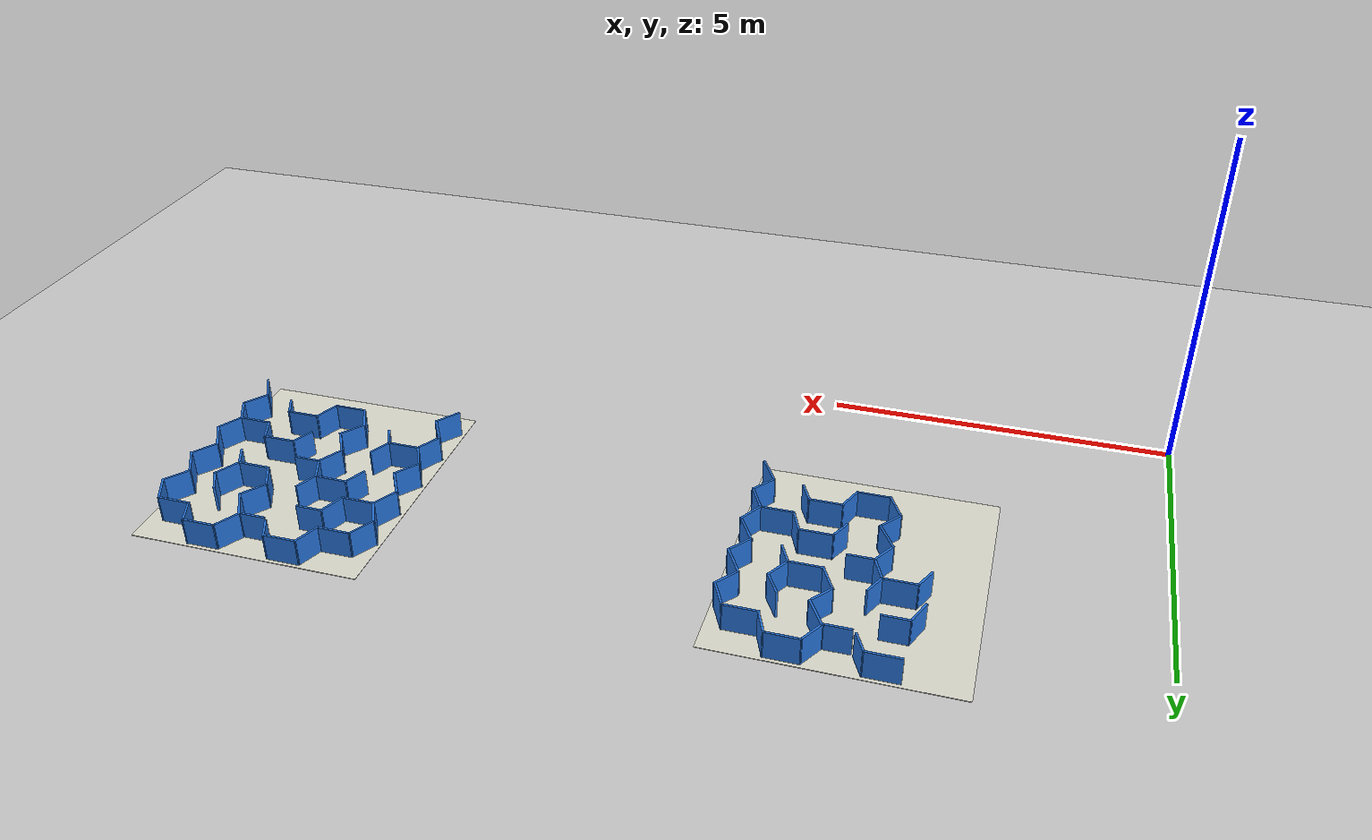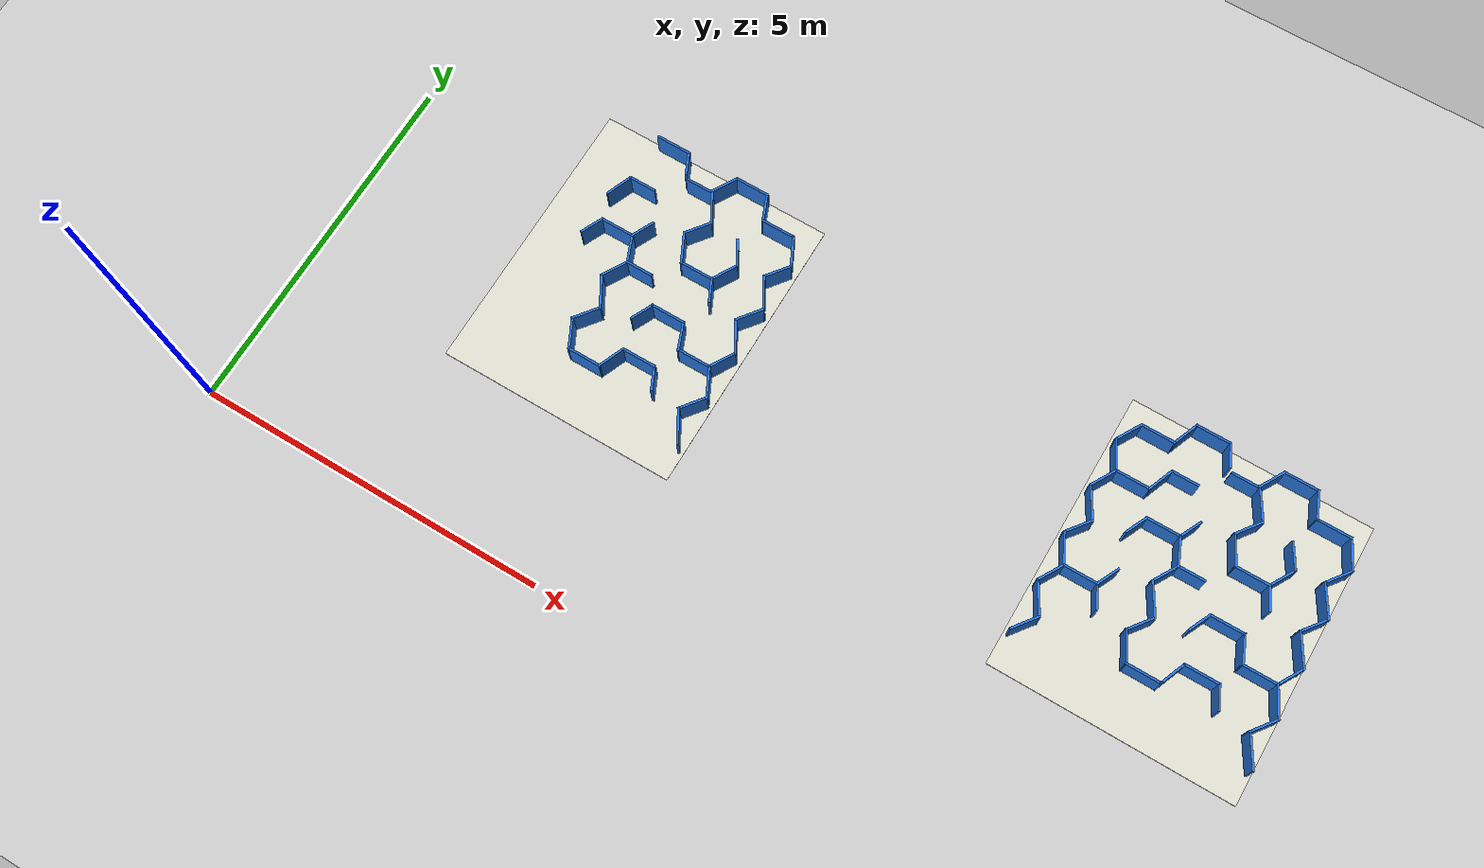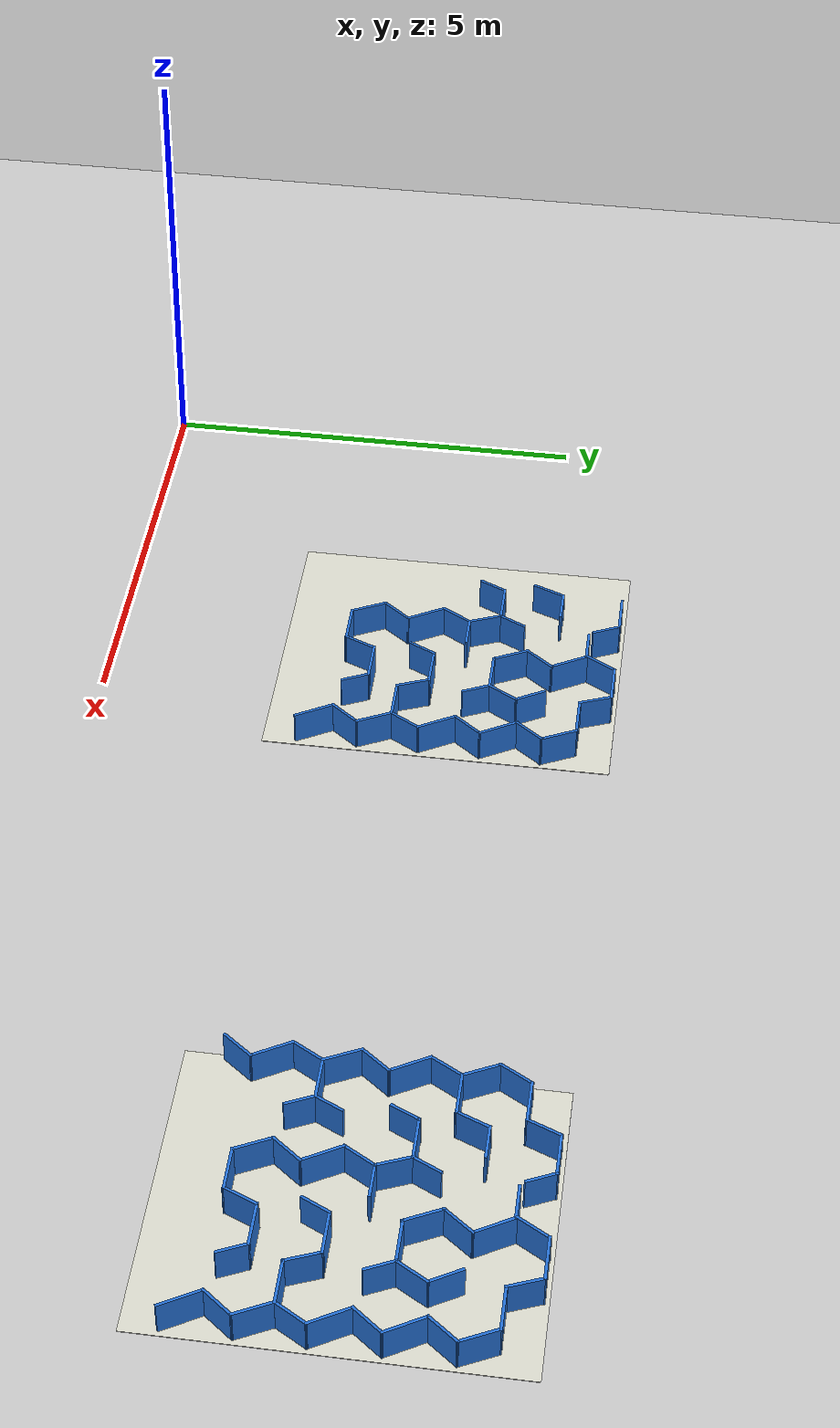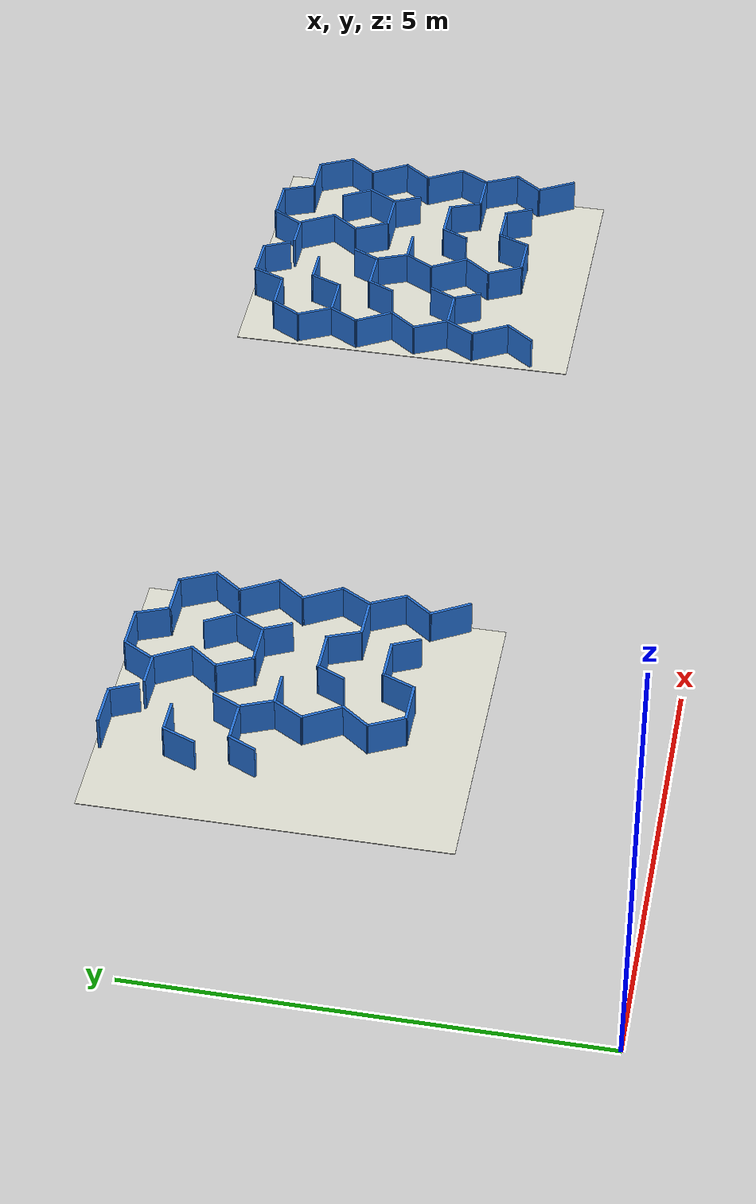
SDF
<sdf version="1.10">
 <world name="nhom8_maze_multi">
  <model name="ground_plane">
   <static>true</static>
   <link name="link">
    <collision name="collision">
     <geometry><plane><normal>0 0 1</normal><size>80.0 80.0</size></plane></geometry>
     <surface><friction><ode><mu>40</mu></ode></friction></surface>
    </collision>
    <visual name="visual">
     <geometry><plane><normal>0 0 1</normal><size>80.0 80.0</size></plane></geometry>
     <material>
      <ambient>0.8 0.8 0.8 1</ambient>
      <diffuse>0.8 0.8 0.8 1</diffuse>
      <specular>0.8 0.8 0.8 1</specular>
     </material>
    </visual>
   </link>
  </model>
  <model name="sigma_3_wall_000">
   <static>true</static>
   <pose>3.390850 5.935000 0.2000 0 0 0.000000</pose>
   <link name="link">
    <collision name="col"><geometry><box><size>0.4975 0.0300 0.4000</size></box></geometry></collision>
    <visual name="vis">
     <geometry><box><size>0.4975 0.0300 0.4000</size></box></geometry>
     <material><ambient>0.15 0.45 0.85 1</ambient><diffuse>0.15 0.45 0.85 1</diffuse></material>
    </visual>
   </link>
  </model>
  <model name="sigma_3_wall_001">
   <static>true</static>
   <pose>4.610000 5.935000 0.2000 0 0 0.000000</pose>
   <link name="link">
    <collision name="col"><geometry><box><size>0.4966 0.0300 0.4000</size></box></geometry></collision>
    <visual name="vis">
     <geometry><box><size>0.4966 0.0300 0.4000</size></box></geometry>
     <material><ambient>0.15 0.45 0.85 1</ambient><diffuse>0.15 0.45 0.85 1</diffuse></material>
    </visual>
   </link>
  </model>
  <model name="sigma_3_wall_003">
   <static>true</static>
   <pose>5.217350 5.585700 0.2000 0 0 0.000000</pose>
   <link name="link">
    <collision name="col"><geometry><box><size>0.4971 0.0300 0.4000</size></box></geometry></collision>
    <visual name="vis">
     <geometry><box><size>0.4971 0.0300 0.4000</size></box></geometry>
     <material><ambient>0.15 0.45 0.85 1</ambient><diffuse>0.15 0.45 0.85 1</diffuse></material>
    </visual>
   </link>
  </model>
  <model name="sigma_3_wall_004">
   <static>true</static>
   <pose>3.339100 5.231200 0.2000 0 0 0.000000</pose>
   <link name="link">
    <collision name="col"><geometry><box><size>0.3936 0.0300 0.4000</size></box></geometry></collision>
    <visual name="vis">
     <geometry><box><size>0.3936 0.0300 0.4000</size></box></geometry>
     <material><ambient>0.15 0.45 0.85 1</ambient><diffuse>0.15 0.45 0.85 1</diffuse></material>
    </visual>
   </link>
  </model>
  <model name="sigma_3_wall_006">
   <static>true</static>
   <pose>3.390150 4.530400 0.2000 0 0 0.000000</pose>
   <link name="link">
    <collision name="col"><geometry><box><size>0.4945 0.0300 0.4000</size></box></geometry></collision>
    <visual name="vis">
     <geometry><box><size>0.4945 0.0300 0.4000</size></box></geometry>
     <material><ambient>0.15 0.45 0.85 1</ambient><diffuse>0.15 0.45 0.85 1</diffuse></material>
    </visual>
   </link>
  </model>
  <model name="sigma_3_wall_007">
   <static>true</static>
   <pose>4.608950 4.530400 0.2000 0 0 0.000000</pose>
   <link name="link">
    <collision name="col"><geometry><box><size>0.4937 0.0300 0.4000</size></box></geometry></collision>
    <visual name="vis">
     <geometry><box><size>0.4937 0.0300 0.4000</size></box></geometry>
     <material><ambient>0.15 0.45 0.85 1</ambient><diffuse>0.15 0.45 0.85 1</diffuse></material>
    </visual>
   </link>
  </model>
  <model name="sigma_3_wall_008">
   <static>true</static>
   <pose>3.950200 4.176800 0.2000 0 0 0.000000</pose>
   <link name="link">
    <collision name="col"><geometry><box><size>0.3920 0.0300 0.4000</size></box></geometry></collision>
    <visual name="vis">
     <geometry><box><size>0.3920 0.0300 0.4000</size></box></geometry>
     <material><ambient>0.15 0.45 0.85 1</ambient><diffuse>0.15 0.45 0.85 1</diffuse></material>
    </visual>
   </link>
  </model>
  <model name="sigma_3_wall_009">
   <static>true</static>
   <pose>4.609900 3.826900 0.2000 0 0 0.000000</pose>
   <link name="link">
    <collision name="col"><geometry><box><size>0.4950 0.0300 0.4000</size></box></geometry></collision>
    <visual name="vis">
     <geometry><box><size>0.4950 0.0300 0.4000</size></box></geometry>
     <material><ambient>0.15 0.45 0.85 1</ambient><diffuse>0.15 0.45 0.85 1</diffuse></material>
    </visual>
   </link>
  </model>
  <model name="sigma_3_wall_011">
   <static>true</static>
   <pose>5.216650 3.475600 0.2000 0 0 0.000000</pose>
   <link name="link">
    <collision name="col"><geometry><box><size>0.4949 0.0300 0.4000</size></box></geometry></collision>
    <visual name="vis">
     <geometry><box><size>0.4949 0.0300 0.4000</size></box></geometry>
     <material><ambient>0.15 0.45 0.85 1</ambient><diffuse>0.15 0.45 0.85 1</diffuse></material>
    </visual>
   </link>
  </model>
  <model name="sigma_3_wall_012">
   <static>true</static>
   <pose>4.609750 3.122900 0.2000 0 0 0.000000</pose>
   <link name="link">
    <collision name="col"><geometry><box><size>0.4965 0.0300 0.4000</size></box></geometry></collision>
    <visual name="vis">
     <geometry><box><size>0.4965 0.0300 0.4000</size></box></geometry>
     <material><ambient>0.15 0.45 0.85 1</ambient><diffuse>0.15 0.45 0.85 1</diffuse></material>
    </visual>
   </link>
  </model>
  <model name="sigma_3_wall_013">
   <static>true</static>
   <pose>4.001200 2.774600 0.2000 0 0 0.000000</pose>
   <link name="link">
    <collision name="col"><geometry><box><size>0.4938 0.0300 0.4000</size></box></geometry></collision>
    <visual name="vis">
     <geometry><box><size>0.4938 0.0300 0.4000</size></box></geometry>
     <material><ambient>0.15 0.45 0.85 1</ambient><diffuse>0.15 0.45 0.85 1</diffuse></material>
    </visual>
   </link>
  </model>
  <model name="sigma_3_wall_018">
   <static>true</static>
   <pose>5.544000 5.396700 0.2000 0 0 -1.113095</pose>
   <link name="link">
    <collision name="col"><geometry><box><size>0.4512 0.0300 0.4000</size></box></geometry></collision>
    <visual name="vis">
     <geometry><box><size>0.4512 0.0300 0.4000</size></box></geometry>
     <material><ambient>0.15 0.45 0.85 1</ambient><diffuse>0.15 0.45 0.85 1</diffuse></material>
    </visual>
   </link>
  </model>
  <model name="sigma_3_wall_019">
   <static>true</static>
   <pose>4.913550 5.760300 0.2000 0 0 -1.188417</pose>
   <link name="link">
    <collision name="col"><geometry><box><size>0.4066 0.0300 0.4000</size></box></geometry></collision>
    <visual name="vis">
     <geometry><box><size>0.4066 0.0300 0.4000</size></box></geometry>
     <material><ambient>0.15 0.45 0.85 1</ambient><diffuse>0.15 0.45 0.85 1</diffuse></material>
    </visual>
   </link>
  </model>
  <model name="sigma_3_wall_020">
   <static>true</static>
   <pose>5.522350 4.706100 0.2000 0 0 -1.047139</pose>
   <link name="link">
    <collision name="col"><geometry><box><size>0.4922 0.0300 0.4000</size></box></geometry></collision>
    <visual name="vis">
     <geometry><box><size>0.4922 0.0300 0.4000</size></box></geometry>
     <material><ambient>0.15 0.45 0.85 1</ambient><diffuse>0.15 0.45 0.85 1</diffuse></material>
    </visual>
   </link>
  </model>
  <model name="sigma_3_wall_021">
   <static>true</static>
   <pose>4.938350 5.013750 0.2000 0 0 -1.047136</pose>
   <link name="link">
    <collision name="col"><geometry><box><size>0.3930 0.0300 0.4000</size></box></geometry></collision>
    <visual name="vis">
     <geometry><box><size>0.3930 0.0300 0.4000</size></box></geometry>
     <material><ambient>0.15 0.45 0.85 1</ambient><diffuse>0.15 0.45 0.85 1</diffuse></material>
    </visual>
   </link>
  </model>
  <model name="sigma_3_wall_022">
   <static>true</static>
   <pose>5.522050 4.002750 0.2000 0 0 -1.047107</pose>
   <link name="link">
    <collision name="col"><geometry><box><size>0.4941 0.0300 0.4000</size></box></geometry></collision>
    <visual name="vis">
     <geometry><box><size>0.4941 0.0300 0.4000</size></box></geometry>
     <material><ambient>0.15 0.45 0.85 1</ambient><diffuse>0.15 0.45 0.85 1</diffuse></material>
    </visual>
   </link>
  </model>
  <model name="sigma_3_wall_023">
   <static>true</static>
   <pose>4.304500 5.409350 0.2000 0 0 -1.047268</pose>
   <link name="link">
    <collision name="col"><geometry><box><size>0.4925 0.0300 0.4000</size></box></geometry></collision>
    <visual name="vis">
     <geometry><box><size>0.4925 0.0300 0.4000</size></box></geometry>
     <material><ambient>0.15 0.45 0.85 1</ambient><diffuse>0.15 0.45 0.85 1</diffuse></material>
    </visual>
   </link>
  </model>
  <model name="sigma_3_wall_024">
   <static>true</static>
   <pose>4.909850 4.385800 0.2000 0 0 -1.125015</pose>
   <link name="link">
    <collision name="col"><geometry><box><size>0.3504 0.0300 0.4000</size></box></geometry></collision>
    <visual name="vis">
     <geometry><box><size>0.3504 0.0300 0.4000</size></box></geometry>
     <material><ambient>0.15 0.45 0.85 1</ambient><diffuse>0.15 0.45 0.85 1</diffuse></material>
    </visual>
   </link>
  </model>
  <model name="sigma_3_wall_025">
   <static>true</static>
   <pose>5.543950 3.287150 0.2000 0 0 -1.104675</pose>
   <link name="link">
    <collision name="col"><geometry><box><size>0.4519 0.0300 0.4000</size></box></geometry></collision>
    <visual name="vis">
     <geometry><box><size>0.4519 0.0300 0.4000</size></box></geometry>
     <material><ambient>0.15 0.45 0.85 1</ambient><diffuse>0.15 0.45 0.85 1</diffuse></material>
    </visual>
   </link>
  </model>
  <model name="sigma_3_wall_026">
   <static>true</static>
   <pose>3.692750 5.791650 0.2000 0 0 -1.126587</pose>
   <link name="link">
    <collision name="col"><geometry><box><size>0.3474 0.0300 0.4000</size></box></geometry></collision>
    <visual name="vis">
     <geometry><box><size>0.3474 0.0300 0.4000</size></box></geometry>
     <material><ambient>0.15 0.45 0.85 1</ambient><diffuse>0.15 0.45 0.85 1</diffuse></material>
    </visual>
   </link>
  </model>
  <model name="sigma_3_wall_027">
   <static>true</static>
   <pose>4.283250 4.718350 0.2000 0 0 -1.107645</pose>
   <link name="link">
    <collision name="col"><geometry><box><size>0.4501 0.0300 0.4000</size></box></geometry></collision>
    <visual name="vis">
     <geometry><box><size>0.4501 0.0300 0.4000</size></box></geometry>
     <material><ambient>0.15 0.45 0.85 1</ambient><diffuse>0.15 0.45 0.85 1</diffuse></material>
    </visual>
   </link>
  </model>
  <model name="sigma_3_wall_028">
   <static>true</static>
   <pose>4.913300 3.651250 0.2000 0 0 -1.187201</pose>
   <link name="link">
    <collision name="col"><geometry><box><size>0.4088 0.0300 0.4000</size></box></geometry></collision>
    <visual name="vis">
     <geometry><box><size>0.4088 0.0300 0.4000</size></box></geometry>
     <material><ambient>0.15 0.45 0.85 1</ambient><diffuse>0.15 0.45 0.85 1</diffuse></material>
    </visual>
   </link>
  </model>
  <model name="sigma_3_wall_029">
   <static>true</static>
   <pose>5.522450 2.597250 0.2000 0 0 -1.047171</pose>
   <link name="link">
    <collision name="col"><geometry><box><size>0.4902 0.0300 0.4000</size></box></geometry></collision>
    <visual name="vis">
     <geometry><box><size>0.4902 0.0300 0.4000</size></box></geometry>
     <material><ambient>0.15 0.45 0.85 1</ambient><diffuse>0.15 0.45 0.85 1</diffuse></material>
    </visual>
   </link>
  </model>
  <model name="sigma_3_wall_030">
   <static>true</static>
   <pose>4.910600 2.979050 0.2000 0 0 -1.131443</pose>
   <link name="link">
    <collision name="col"><geometry><box><size>0.3479 0.0300 0.4000</size></box></geometry></collision>
    <visual name="vis">
     <geometry><box><size>0.3479 0.0300 0.4000</size></box></geometry>
     <material><ambient>0.15 0.45 0.85 1</ambient><diffuse>0.15 0.45 0.85 1</diffuse></material>
    </visual>
   </link>
  </model>
  <model name="sigma_3_wall_031">
   <static>true</static>
   <pose>3.695800 4.353600 0.2000 0 0 -1.177422</pose>
   <link name="link">
    <collision name="col"><geometry><box><size>0.4127 0.0300 0.4000</size></box></geometry></collision>
    <visual name="vis">
     <geometry><box><size>0.4127 0.0300 0.4000</size></box></geometry>
     <material><ambient>0.15 0.45 0.85 1</ambient><diffuse>0.15 0.45 0.85 1</diffuse></material>
    </visual>
   </link>
  </model>
  <model name="sigma_3_wall_033">
   <static>true</static>
   <pose>3.696100 3.651450 0.2000 0 0 -1.047065</pose>
   <link name="link">
    <collision name="col"><geometry><box><size>0.4923 0.0300 0.4000</size></box></geometry></collision>
    <visual name="vis">
     <geometry><box><size>0.4923 0.0300 0.4000</size></box></geometry>
     <material><ambient>0.15 0.45 0.85 1</ambient><diffuse>0.15 0.45 0.85 1</diffuse></material>
    </visual>
   </link>
  </model>
  <model name="sigma_3_wall_035">
   <static>true</static>
   <pose>3.674600 2.962500 0.2000 0 0 -1.104173</pose>
   <link name="link">
    <collision name="col"><geometry><box><size>0.4508 0.0300 0.4000</size></box></geometry></collision>
    <visual name="vis">
     <geometry><box><size>0.4508 0.0300 0.4000</size></box></geometry>
     <material><ambient>0.15 0.45 0.85 1</ambient><diffuse>0.15 0.45 0.85 1</diffuse></material>
    </visual>
   </link>
  </model>
  <model name="sigma_3_wall_044">
   <static>true</static>
   <pose>5.523100 2.947600 0.2000 0 0 0.917358</pose>
   <link name="link">
    <collision name="col"><geometry><box><size>0.4106 0.0300 0.4000</size></box></geometry></collision>
    <visual name="vis">
     <geometry><box><size>0.4106 0.0300 0.4000</size></box></geometry>
     <material><ambient>0.15 0.45 0.85 1</ambient><diffuse>0.15 0.45 0.85 1</diffuse></material>
    </visual>
   </link>
  </model>
  <model name="sigma_3_wall_045">
   <static>true</static>
   <pose>5.543600 3.638750 0.2000 0 0 1.045676</pose>
   <link name="link">
    <collision name="col"><geometry><box><size>0.4069 0.0300 0.4000</size></box></geometry></collision>
    <visual name="vis">
     <geometry><box><size>0.4069 0.0300 0.4000</size></box></geometry>
     <material><ambient>0.15 0.45 0.85 1</ambient><diffuse>0.15 0.45 0.85 1</diffuse></material>
    </visual>
   </link>
  </model>
  <model name="sigma_3_wall_046">
   <static>true</static>
   <pose>5.521950 4.354850 0.2000 0 0 0.916540</pose>
   <link name="link">
    <collision name="col"><geometry><box><size>0.4110 0.0300 0.4000</size></box></geometry></collision>
    <visual name="vis">
     <geometry><box><size>0.4110 0.0300 0.4000</size></box></geometry>
     <material><ambient>0.15 0.45 0.85 1</ambient><diffuse>0.15 0.45 0.85 1</diffuse></material>
    </visual>
   </link>
  </model>
  <model name="sigma_3_wall_048">
   <static>true</static>
   <pose>5.521950 5.057000 0.2000 0 0 0.918600</pose>
   <link name="link">
    <collision name="col"><geometry><box><size>0.4094 0.0300 0.4000</size></box></geometry></collision>
    <visual name="vis">
     <geometry><box><size>0.4094 0.0300 0.4000</size></box></geometry>
     <material><ambient>0.15 0.45 0.85 1</ambient><diffuse>0.15 0.45 0.85 1</diffuse></material>
    </visual>
   </link>
  </model>
  <model name="sigma_3_wall_049">
   <static>true</static>
   <pose>4.304800 2.948750 0.2000 0 0 1.180336</pose>
   <link name="link">
    <collision name="col"><geometry><box><size>0.4067 0.0300 0.4000</size></box></geometry></collision>
    <visual name="vis">
     <geometry><box><size>0.4067 0.0300 0.4000</size></box></geometry>
     <material><ambient>0.15 0.45 0.85 1</ambient><diffuse>0.15 0.45 0.85 1</diffuse></material>
    </visual>
   </link>
  </model>
  <model name="sigma_3_wall_050">
   <static>true</static>
   <pose>4.934950 4.693500 0.2000 0 0 1.047289</pose>
   <link name="link">
    <collision name="col"><geometry><box><size>0.4067 0.0300 0.4000</size></box></geometry></collision>
    <visual name="vis">
     <geometry><box><size>0.4067 0.0300 0.4000</size></box></geometry>
     <material><ambient>0.15 0.45 0.85 1</ambient><diffuse>0.15 0.45 0.85 1</diffuse></material>
    </visual>
   </link>
  </model>
  <model name="sigma_3_wall_051">
   <static>true</static>
   <pose>4.308700 3.683250 0.2000 0 0 1.124995</pose>
   <link name="link">
    <collision name="col"><geometry><box><size>0.3483 0.0300 0.4000</size></box></geometry></collision>
    <visual name="vis">
     <geometry><box><size>0.3483 0.0300 0.4000</size></box></geometry>
     <material><ambient>0.15 0.45 0.85 1</ambient><diffuse>0.15 0.45 0.85 1</diffuse></material>
    </visual>
   </link>
  </model>
  <model name="sigma_3_wall_053">
   <static>true</static>
   <pose>3.695800 3.300850 0.2000 0 0 0.914654</pose>
   <link name="link">
    <collision name="col"><geometry><box><size>0.4098 0.0300 0.4000</size></box></geometry></collision>
    <visual name="vis">
     <geometry><box><size>0.4098 0.0300 0.4000</size></box></geometry>
     <material><ambient>0.15 0.45 0.85 1</ambient><diffuse>0.15 0.45 0.85 1</diffuse></material>
    </visual>
   </link>
  </model>
  <model name="sigma_3_wall_055">
   <static>true</static>
   <pose>4.304750 5.057700 0.2000 0 0 0.919600</pose>
   <link name="link">
    <collision name="col"><geometry><box><size>0.4106 0.0300 0.4000</size></box></geometry></collision>
    <visual name="vis">
     <geometry><box><size>0.4106 0.0300 0.4000</size></box></geometry>
     <material><ambient>0.15 0.45 0.85 1</ambient><diffuse>0.15 0.45 0.85 1</diffuse></material>
    </visual>
   </link>
  </model>
  <model name="sigma_3_wall_056">
   <static>true</static>
   <pose>3.674850 4.014200 0.2000 0 0 1.045204</pose>
   <link name="link">
    <collision name="col"><geometry><box><size>0.4060 0.0300 0.4000</size></box></geometry></collision>
    <visual name="vis">
     <geometry><box><size>0.4060 0.0300 0.4000</size></box></geometry>
     <material><ambient>0.15 0.45 0.85 1</ambient><diffuse>0.15 0.45 0.85 1</diffuse></material>
    </visual>
   </link>
  </model>
  <model name="sigma_3_wall_057">
   <static>true</static>
   <pose>4.282800 5.772300 0.2000 0 0 1.047370</pose>
   <link name="link">
    <collision name="col"><geometry><box><size>0.4057 0.0300 0.4000</size></box></geometry></collision>
    <visual name="vis">
     <geometry><box><size>0.4057 0.0300 0.4000</size></box></geometry>
     <material><ambient>0.15 0.45 0.85 1</ambient><diffuse>0.15 0.45 0.85 1</diffuse></material>
    </visual>
   </link>
  </model>
  <model name="sigma_3_wall_058">
   <static>true</static>
   <pose>3.691750 4.674250 0.2000 0 0 1.121614</pose>
   <link name="link">
    <collision name="col"><geometry><box><size>0.3494 0.0300 0.4000</size></box></geometry></collision>
    <visual name="vis">
     <geometry><box><size>0.3494 0.0300 0.4000</size></box></geometry>
     <material><ambient>0.15 0.45 0.85 1</ambient><diffuse>0.15 0.45 0.85 1</diffuse></material>
    </visual>
   </link>
  </model>
  <model name="sigma_3_wall_061">
   <static>true</static>
   <pose>3.089950 4.385500 0.2000 0 0 1.132702</pose>
   <link name="link">
    <collision name="col"><geometry><box><size>0.3501 0.0300 0.4000</size></box></geometry></collision>
    <visual name="vis">
     <geometry><box><size>0.3501 0.0300 0.4000</size></box></geometry>
     <material><ambient>0.15 0.45 0.85 1</ambient><diffuse>0.15 0.45 0.85 1</diffuse></material>
    </visual>
   </link>
  </model>
  <model name="sigma_3_wall_063">
   <static>true</static>
   <pose>3.087400 5.058100 0.2000 0 0 1.187067</pose>
   <link name="link">
    <collision name="col"><geometry><box><size>0.4033 0.0300 0.4000</size></box></geometry></collision>
    <visual name="vis">
     <geometry><box><size>0.4033 0.0300 0.4000</size></box></geometry>
     <material><ambient>0.15 0.45 0.85 1</ambient><diffuse>0.15 0.45 0.85 1</diffuse></material>
    </visual>
   </link>
  </model>
  <model name="sigma_3_wall_068">
   <static>true</static>
   <pose>4.002900 5.594200 0.2000 0 0 0.000000</pose>
   <link name="link">
    <collision name="col"><geometry><box><size>0.3966 0.0300 0.4000</size></box></geometry></collision>
    <visual name="vis">
     <geometry><box><size>0.3966 0.0300 0.4000</size></box></geometry>
     <material><ambient>0.15 0.45 0.85 1</ambient><diffuse>0.15 0.45 0.85 1</diffuse></material>
    </visual>
   </link>
  </model>
  <model name="sigma_3_floor">
   <static>true</static>
   <pose>4.000000 4.000000 -0.02 0 0 0</pose>
   <link name="link">
    <collision name="col"><geometry><box><size>3.3952 3.9891 0.03</size></box></geometry></collision>
    <visual name="vis">
     <geometry><box><size>3.3952 3.9891 0.03</size></box></geometry>
     <material><ambient>0.87 0.87 0.82 1</ambient><diffuse>0.87 0.87 0.82 1</diffuse></material>
    </visual>
   </link>
  </model>
  <model name="sigma_4_wall_000">
   <static>true</static>
   <pose>11.390850 5.935000 0.2000 0 0 0.000000</pose>
   <link name="link">
    <collision name="col"><geometry><box><size>0.4975 0.0300 0.4000</size></box></geometry></collision>
    <visual name="vis">
     <geometry><box><size>0.4975 0.0300 0.4000</size></box></geometry>
     <material><ambient>0.15 0.45 0.85 1</ambient><diffuse>0.15 0.45 0.85 1</diffuse></material>
    </visual>
   </link>
  </model>
  <model name="sigma_4_wall_001">
   <static>true</static>
   <pose>12.610000 5.935000 0.2000 0 0 0.000000</pose>
   <link name="link">
    <collision name="col"><geometry><box><size>0.4966 0.0300 0.4000</size></box></geometry></collision>
    <visual name="vis">
     <geometry><box><size>0.4966 0.0300 0.4000</size></box></geometry>
     <material><ambient>0.15 0.45 0.85 1</ambient><diffuse>0.15 0.45 0.85 1</diffuse></material>
    </visual>
   </link>
  </model>
  <model name="sigma_4_wall_002">
   <static>true</static>
   <pose>10.784750 5.585700 0.2000 0 0 0.000000</pose>
   <link name="link">
    <collision name="col"><geometry><box><size>0.4951 0.0300 0.4000</size></box></geometry></collision>
    <visual name="vis">
     <geometry><box><size>0.4951 0.0300 0.4000</size></box></geometry>
     <material><ambient>0.15 0.45 0.85 1</ambient><diffuse>0.15 0.45 0.85 1</diffuse></material>
    </visual>
   </link>
  </model>
  <model name="sigma_4_wall_003">
   <static>true</static>
   <pose>13.217350 5.585700 0.2000 0 0 0.000000</pose>
   <link name="link">
    <collision name="col"><geometry><box><size>0.4971 0.0300 0.4000</size></box></geometry></collision>
    <visual name="vis">
     <geometry><box><size>0.4971 0.0300 0.4000</size></box></geometry>
     <material><ambient>0.15 0.45 0.85 1</ambient><diffuse>0.15 0.45 0.85 1</diffuse></material>
    </visual>
   </link>
  </model>
  <model name="sigma_4_wall_004">
   <static>true</static>
   <pose>11.339100 5.231200 0.2000 0 0 0.000000</pose>
   <link name="link">
    <collision name="col"><geometry><box><size>0.3936 0.0300 0.4000</size></box></geometry></collision>
    <visual name="vis">
     <geometry><box><size>0.3936 0.0300 0.4000</size></box></geometry>
     <material><ambient>0.15 0.45 0.85 1</ambient><diffuse>0.15 0.45 0.85 1</diffuse></material>
    </visual>
   </link>
  </model>
  <model name="sigma_4_wall_005">
   <static>true</static>
   <pose>10.784350 4.885000 0.2000 0 0 0.000000</pose>
   <link name="link">
    <collision name="col"><geometry><box><size>0.4963 0.0300 0.4000</size></box></geometry></collision>
    <visual name="vis">
     <geometry><box><size>0.4963 0.0300 0.4000</size></box></geometry>
     <material><ambient>0.15 0.45 0.85 1</ambient><diffuse>0.15 0.45 0.85 1</diffuse></material>
    </visual>
   </link>
  </model>
  <model name="sigma_4_wall_006">
   <static>true</static>
   <pose>11.390150 4.530400 0.2000 0 0 0.000000</pose>
   <link name="link">
    <collision name="col"><geometry><box><size>0.4945 0.0300 0.4000</size></box></geometry></collision>
    <visual name="vis">
     <geometry><box><size>0.4945 0.0300 0.4000</size></box></geometry>
     <material><ambient>0.15 0.45 0.85 1</ambient><diffuse>0.15 0.45 0.85 1</diffuse></material>
    </visual>
   </link>
  </model>
  <model name="sigma_4_wall_007">
   <static>true</static>
   <pose>12.608950 4.530400 0.2000 0 0 0.000000</pose>
   <link name="link">
    <collision name="col"><geometry><box><size>0.4937 0.0300 0.4000</size></box></geometry></collision>
    <visual name="vis">
     <geometry><box><size>0.4937 0.0300 0.4000</size></box></geometry>
     <material><ambient>0.15 0.45 0.85 1</ambient><diffuse>0.15 0.45 0.85 1</diffuse></material>
    </visual>
   </link>
  </model>
  <model name="sigma_4_wall_008">
   <static>true</static>
   <pose>11.950200 4.176800 0.2000 0 0 0.000000</pose>
   <link name="link">
    <collision name="col"><geometry><box><size>0.3920 0.0300 0.4000</size></box></geometry></collision>
    <visual name="vis">
     <geometry><box><size>0.3920 0.0300 0.4000</size></box></geometry>
     <material><ambient>0.15 0.45 0.85 1</ambient><diffuse>0.15 0.45 0.85 1</diffuse></material>
    </visual>
   </link>
  </model>
  <model name="sigma_4_wall_009">
   <static>true</static>
   <pose>12.609900 3.826900 0.2000 0 0 0.000000</pose>
   <link name="link">
    <collision name="col"><geometry><box><size>0.4950 0.0300 0.4000</size></box></geometry></collision>
    <visual name="vis">
     <geometry><box><size>0.4950 0.0300 0.4000</size></box></geometry>
     <material><ambient>0.15 0.45 0.85 1</ambient><diffuse>0.15 0.45 0.85 1</diffuse></material>
    </visual>
   </link>
  </model>
  <model name="sigma_4_wall_010">
   <static>true</static>
   <pose>10.782050 3.475600 0.2000 0 0 0.000000</pose>
   <link name="link">
    <collision name="col"><geometry><box><size>0.4929 0.0300 0.4000</size></box></geometry></collision>
    <visual name="vis">
     <geometry><box><size>0.4929 0.0300 0.4000</size></box></geometry>
     <material><ambient>0.15 0.45 0.85 1</ambient><diffuse>0.15 0.45 0.85 1</diffuse></material>
    </visual>
   </link>
  </model>
  <model name="sigma_4_wall_011">
   <static>true</static>
   <pose>13.216650 3.475600 0.2000 0 0 0.000000</pose>
   <link name="link">
    <collision name="col"><geometry><box><size>0.4949 0.0300 0.4000</size></box></geometry></collision>
    <visual name="vis">
     <geometry><box><size>0.4949 0.0300 0.4000</size></box></geometry>
     <material><ambient>0.15 0.45 0.85 1</ambient><diffuse>0.15 0.45 0.85 1</diffuse></material>
    </visual>
   </link>
  </model>
  <model name="sigma_4_wall_012">
   <static>true</static>
   <pose>12.609750 3.122900 0.2000 0 0 0.000000</pose>
   <link name="link">
    <collision name="col"><geometry><box><size>0.4965 0.0300 0.4000</size></box></geometry></collision>
    <visual name="vis">
     <geometry><box><size>0.4965 0.0300 0.4000</size></box></geometry>
     <material><ambient>0.15 0.45 0.85 1</ambient><diffuse>0.15 0.45 0.85 1</diffuse></material>
    </visual>
   </link>
  </model>
  <model name="sigma_4_wall_013">
   <static>true</static>
   <pose>12.001200 2.774600 0.2000 0 0 0.000000</pose>
   <link name="link">
    <collision name="col"><geometry><box><size>0.4938 0.0300 0.4000</size></box></geometry></collision>
    <visual name="vis">
     <geometry><box><size>0.4938 0.0300 0.4000</size></box></geometry>
     <material><ambient>0.15 0.45 0.85 1</ambient><diffuse>0.15 0.45 0.85 1</diffuse></material>
    </visual>
   </link>
  </model>
  <model name="sigma_4_wall_018">
   <static>true</static>
   <pose>13.544000 5.396700 0.2000 0 0 -1.113095</pose>
   <link name="link">
    <collision name="col"><geometry><box><size>0.4512 0.0300 0.4000</size></box></geometry></collision>
    <visual name="vis">
     <geometry><box><size>0.4512 0.0300 0.4000</size></box></geometry>
     <material><ambient>0.15 0.45 0.85 1</ambient><diffuse>0.15 0.45 0.85 1</diffuse></material>
    </visual>
   </link>
  </model>
  <model name="sigma_4_wall_019">
   <static>true</static>
   <pose>12.913550 5.760300 0.2000 0 0 -1.188417</pose>
   <link name="link">
    <collision name="col"><geometry><box><size>0.4066 0.0300 0.4000</size></box></geometry></collision>
    <visual name="vis">
     <geometry><box><size>0.4066 0.0300 0.4000</size></box></geometry>
     <material><ambient>0.15 0.45 0.85 1</ambient><diffuse>0.15 0.45 0.85 1</diffuse></material>
    </visual>
   </link>
  </model>
  <model name="sigma_4_wall_020">
   <static>true</static>
   <pose>13.522350 4.706100 0.2000 0 0 -1.047139</pose>
   <link name="link">
    <collision name="col"><geometry><box><size>0.4922 0.0300 0.4000</size></box></geometry></collision>
    <visual name="vis">
     <geometry><box><size>0.4922 0.0300 0.4000</size></box></geometry>
     <material><ambient>0.15 0.45 0.85 1</ambient><diffuse>0.15 0.45 0.85 1</diffuse></material>
    </visual>
   </link>
  </model>
  <model name="sigma_4_wall_021">
   <static>true</static>
   <pose>12.938350 5.013750 0.2000 0 0 -1.047136</pose>
   <link name="link">
    <collision name="col"><geometry><box><size>0.3930 0.0300 0.4000</size></box></geometry></collision>
    <visual name="vis">
     <geometry><box><size>0.3930 0.0300 0.4000</size></box></geometry>
     <material><ambient>0.15 0.45 0.85 1</ambient><diffuse>0.15 0.45 0.85 1</diffuse></material>
    </visual>
   </link>
  </model>
  <model name="sigma_4_wall_022">
   <static>true</static>
   <pose>13.522050 4.002750 0.2000 0 0 -1.047107</pose>
   <link name="link">
    <collision name="col"><geometry><box><size>0.4941 0.0300 0.4000</size></box></geometry></collision>
    <visual name="vis">
     <geometry><box><size>0.4941 0.0300 0.4000</size></box></geometry>
     <material><ambient>0.15 0.45 0.85 1</ambient><diffuse>0.15 0.45 0.85 1</diffuse></material>
    </visual>
   </link>
  </model>
  <model name="sigma_4_wall_023">
   <static>true</static>
   <pose>12.304500 5.409350 0.2000 0 0 -1.047268</pose>
   <link name="link">
    <collision name="col"><geometry><box><size>0.4925 0.0300 0.4000</size></box></geometry></collision>
    <visual name="vis">
     <geometry><box><size>0.4925 0.0300 0.4000</size></box></geometry>
     <material><ambient>0.15 0.45 0.85 1</ambient><diffuse>0.15 0.45 0.85 1</diffuse></material>
    </visual>
   </link>
  </model>
  <model name="sigma_4_wall_024">
   <static>true</static>
   <pose>12.909850 4.385800 0.2000 0 0 -1.125015</pose>
   <link name="link">
    <collision name="col"><geometry><box><size>0.3504 0.0300 0.4000</size></box></geometry></collision>
    <visual name="vis">
     <geometry><box><size>0.3504 0.0300 0.4000</size></box></geometry>
     <material><ambient>0.15 0.45 0.85 1</ambient><diffuse>0.15 0.45 0.85 1</diffuse></material>
    </visual>
   </link>
  </model>
  <model name="sigma_4_wall_025">
   <static>true</static>
   <pose>13.543950 3.287150 0.2000 0 0 -1.104675</pose>
   <link name="link">
    <collision name="col"><geometry><box><size>0.4519 0.0300 0.4000</size></box></geometry></collision>
    <visual name="vis">
     <geometry><box><size>0.4519 0.0300 0.4000</size></box></geometry>
     <material><ambient>0.15 0.45 0.85 1</ambient><diffuse>0.15 0.45 0.85 1</diffuse></material>
    </visual>
   </link>
  </model>
  <model name="sigma_4_wall_026">
   <static>true</static>
   <pose>11.692750 5.791650 0.2000 0 0 -1.126587</pose>
   <link name="link">
    <collision name="col"><geometry><box><size>0.3474 0.0300 0.4000</size></box></geometry></collision>
    <visual name="vis">
     <geometry><box><size>0.3474 0.0300 0.4000</size></box></geometry>
     <material><ambient>0.15 0.45 0.85 1</ambient><diffuse>0.15 0.45 0.85 1</diffuse></material>
    </visual>
   </link>
  </model>
  <model name="sigma_4_wall_027">
   <static>true</static>
   <pose>12.283250 4.718350 0.2000 0 0 -1.107645</pose>
   <link name="link">
    <collision name="col"><geometry><box><size>0.4501 0.0300 0.4000</size></box></geometry></collision>
    <visual name="vis">
     <geometry><box><size>0.4501 0.0300 0.4000</size></box></geometry>
     <material><ambient>0.15 0.45 0.85 1</ambient><diffuse>0.15 0.45 0.85 1</diffuse></material>
    </visual>
   </link>
  </model>
  <model name="sigma_4_wall_028">
   <static>true</static>
   <pose>12.913300 3.651250 0.2000 0 0 -1.187201</pose>
   <link name="link">
    <collision name="col"><geometry><box><size>0.4088 0.0300 0.4000</size></box></geometry></collision>
    <visual name="vis">
     <geometry><box><size>0.4088 0.0300 0.4000</size></box></geometry>
     <material><ambient>0.15 0.45 0.85 1</ambient><diffuse>0.15 0.45 0.85 1</diffuse></material>
    </visual>
   </link>
  </model>
  <model name="sigma_4_wall_029">
   <static>true</static>
   <pose>13.522450 2.597250 0.2000 0 0 -1.047171</pose>
   <link name="link">
    <collision name="col"><geometry><box><size>0.4902 0.0300 0.4000</size></box></geometry></collision>
    <visual name="vis">
     <geometry><box><size>0.4902 0.0300 0.4000</size></box></geometry>
     <material><ambient>0.15 0.45 0.85 1</ambient><diffuse>0.15 0.45 0.85 1</diffuse></material>
    </visual>
   </link>
  </model>
  <model name="sigma_4_wall_030">
   <static>true</static>
   <pose>12.910600 2.979050 0.2000 0 0 -1.131443</pose>
   <link name="link">
    <collision name="col"><geometry><box><size>0.3479 0.0300 0.4000</size></box></geometry></collision>
    <visual name="vis">
     <geometry><box><size>0.3479 0.0300 0.4000</size></box></geometry>
     <material><ambient>0.15 0.45 0.85 1</ambient><diffuse>0.15 0.45 0.85 1</diffuse></material>
    </visual>
   </link>
  </model>
  <model name="sigma_4_wall_031">
   <static>true</static>
   <pose>11.695800 4.353600 0.2000 0 0 -1.177422</pose>
   <link name="link">
    <collision name="col"><geometry><box><size>0.4127 0.0300 0.4000</size></box></geometry></collision>
    <visual name="vis">
     <geometry><box><size>0.4127 0.0300 0.4000</size></box></geometry>
     <material><ambient>0.15 0.45 0.85 1</ambient><diffuse>0.15 0.45 0.85 1</diffuse></material>
    </visual>
   </link>
  </model>
  <model name="sigma_4_wall_033">
   <static>true</static>
   <pose>11.696100 3.651450 0.2000 0 0 -1.047065</pose>
   <link name="link">
    <collision name="col"><geometry><box><size>0.4923 0.0300 0.4000</size></box></geometry></collision>
    <visual name="vis">
     <geometry><box><size>0.4923 0.0300 0.4000</size></box></geometry>
     <material><ambient>0.15 0.45 0.85 1</ambient><diffuse>0.15 0.45 0.85 1</diffuse></material>
    </visual>
   </link>
  </model>
  <model name="sigma_4_wall_034">
   <static>true</static>
   <pose>10.457350 5.071300 0.2000 0 0 -1.103949</pose>
   <link name="link">
    <collision name="col"><geometry><box><size>0.4473 0.0300 0.4000</size></box></geometry></collision>
    <visual name="vis">
     <geometry><box><size>0.4473 0.0300 0.4000</size></box></geometry>
     <material><ambient>0.15 0.45 0.85 1</ambient><diffuse>0.15 0.45 0.85 1</diffuse></material>
    </visual>
   </link>
  </model>
  <model name="sigma_4_wall_035">
   <static>true</static>
   <pose>11.674600 2.962500 0.2000 0 0 -1.104173</pose>
   <link name="link">
    <collision name="col"><geometry><box><size>0.4508 0.0300 0.4000</size></box></geometry></collision>
    <visual name="vis">
     <geometry><box><size>0.4508 0.0300 0.4000</size></box></geometry>
     <material><ambient>0.15 0.45 0.85 1</ambient><diffuse>0.15 0.45 0.85 1</diffuse></material>
    </visual>
   </link>
  </model>
  <model name="sigma_4_wall_036">
   <static>true</static>
   <pose>10.478400 4.354700 0.2000 0 0 -1.047112</pose>
   <link name="link">
    <collision name="col"><geometry><box><size>0.4919 0.0300 0.4000</size></box></geometry></collision>
    <visual name="vis">
     <geometry><box><size>0.4919 0.0300 0.4000</size></box></geometry>
     <material><ambient>0.15 0.45 0.85 1</ambient><diffuse>0.15 0.45 0.85 1</diffuse></material>
    </visual>
   </link>
  </model>
  <model name="sigma_4_wall_037">
   <static>true</static>
   <pose>11.082900 3.331550 0.2000 0 0 -1.121854</pose>
   <link name="link">
    <collision name="col"><geometry><box><size>0.3498 0.0300 0.4000</size></box></geometry></collision>
    <visual name="vis">
     <geometry><box><size>0.3498 0.0300 0.4000</size></box></geometry>
     <material><ambient>0.15 0.45 0.85 1</ambient><diffuse>0.15 0.45 0.85 1</diffuse></material>
    </visual>
   </link>
  </model>
  <model name="sigma_4_wall_039">
   <static>true</static>
   <pose>10.456250 3.664700 0.2000 0 0 -1.107939</pose>
   <link name="link">
    <collision name="col"><geometry><box><size>0.4526 0.0300 0.4000</size></box></geometry></collision>
    <visual name="vis">
     <geometry><box><size>0.4526 0.0300 0.4000</size></box></geometry>
     <material><ambient>0.15 0.45 0.85 1</ambient><diffuse>0.15 0.45 0.85 1</diffuse></material>
    </visual>
   </link>
  </model>
  <model name="sigma_4_wall_041">
   <static>true</static>
   <pose>10.478200 2.949150 0.2000 0 0 -1.047213</pose>
   <link name="link">
    <collision name="col"><geometry><box><size>0.4920 0.0300 0.4000</size></box></geometry></collision>
    <visual name="vis">
     <geometry><box><size>0.4920 0.0300 0.4000</size></box></geometry>
     <material><ambient>0.15 0.45 0.85 1</ambient><diffuse>0.15 0.45 0.85 1</diffuse></material>
    </visual>
   </link>
  </model>
  <model name="sigma_4_wall_044">
   <static>true</static>
   <pose>13.523100 2.947600 0.2000 0 0 0.917358</pose>
   <link name="link">
    <collision name="col"><geometry><box><size>0.4106 0.0300 0.4000</size></box></geometry></collision>
    <visual name="vis">
     <geometry><box><size>0.4106 0.0300 0.4000</size></box></geometry>
     <material><ambient>0.15 0.45 0.85 1</ambient><diffuse>0.15 0.45 0.85 1</diffuse></material>
    </visual>
   </link>
  </model>
  <model name="sigma_4_wall_045">
   <static>true</static>
   <pose>13.543600 3.638750 0.2000 0 0 1.045676</pose>
   <link name="link">
    <collision name="col"><geometry><box><size>0.4069 0.0300 0.4000</size></box></geometry></collision>
    <visual name="vis">
     <geometry><box><size>0.4069 0.0300 0.4000</size></box></geometry>
     <material><ambient>0.15 0.45 0.85 1</ambient><diffuse>0.15 0.45 0.85 1</diffuse></material>
    </visual>
   </link>
  </model>
  <model name="sigma_4_wall_046">
   <static>true</static>
   <pose>13.521950 4.354850 0.2000 0 0 0.916540</pose>
   <link name="link">
    <collision name="col"><geometry><box><size>0.4110 0.0300 0.4000</size></box></geometry></collision>
    <visual name="vis">
     <geometry><box><size>0.4110 0.0300 0.4000</size></box></geometry>
     <material><ambient>0.15 0.45 0.85 1</ambient><diffuse>0.15 0.45 0.85 1</diffuse></material>
    </visual>
   </link>
  </model>
  <model name="sigma_4_wall_048">
   <static>true</static>
   <pose>13.521950 5.057000 0.2000 0 0 0.918600</pose>
   <link name="link">
    <collision name="col"><geometry><box><size>0.4094 0.0300 0.4000</size></box></geometry></collision>
    <visual name="vis">
     <geometry><box><size>0.4094 0.0300 0.4000</size></box></geometry>
     <material><ambient>0.15 0.45 0.85 1</ambient><diffuse>0.15 0.45 0.85 1</diffuse></material>
    </visual>
   </link>
  </model>
  <model name="sigma_4_wall_049">
   <static>true</static>
   <pose>12.304800 2.948750 0.2000 0 0 1.180336</pose>
   <link name="link">
    <collision name="col"><geometry><box><size>0.4067 0.0300 0.4000</size></box></geometry></collision>
    <visual name="vis">
     <geometry><box><size>0.4067 0.0300 0.4000</size></box></geometry>
     <material><ambient>0.15 0.45 0.85 1</ambient><diffuse>0.15 0.45 0.85 1</diffuse></material>
    </visual>
   </link>
  </model>
  <model name="sigma_4_wall_050">
   <static>true</static>
   <pose>12.934950 4.693500 0.2000 0 0 1.047289</pose>
   <link name="link">
    <collision name="col"><geometry><box><size>0.4067 0.0300 0.4000</size></box></geometry></collision>
    <visual name="vis">
     <geometry><box><size>0.4067 0.0300 0.4000</size></box></geometry>
     <material><ambient>0.15 0.45 0.85 1</ambient><diffuse>0.15 0.45 0.85 1</diffuse></material>
    </visual>
   </link>
  </model>
  <model name="sigma_4_wall_051">
   <static>true</static>
   <pose>12.308700 3.683250 0.2000 0 0 1.124995</pose>
   <link name="link">
    <collision name="col"><geometry><box><size>0.3483 0.0300 0.4000</size></box></geometry></collision>
    <visual name="vis">
     <geometry><box><size>0.3483 0.0300 0.4000</size></box></geometry>
     <material><ambient>0.15 0.45 0.85 1</ambient><diffuse>0.15 0.45 0.85 1</diffuse></material>
    </visual>
   </link>
  </model>
  <model name="sigma_4_wall_053">
   <static>true</static>
   <pose>11.695800 3.300850 0.2000 0 0 0.914654</pose>
   <link name="link">
    <collision name="col"><geometry><box><size>0.4098 0.0300 0.4000</size></box></geometry></collision>
    <visual name="vis">
     <geometry><box><size>0.4098 0.0300 0.4000</size></box></geometry>
     <material><ambient>0.15 0.45 0.85 1</ambient><diffuse>0.15 0.45 0.85 1</diffuse></material>
    </visual>
   </link>
  </model>
  <model name="sigma_4_wall_055">
   <static>true</static>
   <pose>12.304750 5.057700 0.2000 0 0 0.919600</pose>
   <link name="link">
    <collision name="col"><geometry><box><size>0.4106 0.0300 0.4000</size></box></geometry></collision>
    <visual name="vis">
     <geometry><box><size>0.4106 0.0300 0.4000</size></box></geometry>
     <material><ambient>0.15 0.45 0.85 1</ambient><diffuse>0.15 0.45 0.85 1</diffuse></material>
    </visual>
   </link>
  </model>
  <model name="sigma_4_wall_056">
   <static>true</static>
   <pose>11.674850 4.014200 0.2000 0 0 1.045204</pose>
   <link name="link">
    <collision name="col"><geometry><box><size>0.4060 0.0300 0.4000</size></box></geometry></collision>
    <visual name="vis">
     <geometry><box><size>0.4060 0.0300 0.4000</size></box></geometry>
     <material><ambient>0.15 0.45 0.85 1</ambient><diffuse>0.15 0.45 0.85 1</diffuse></material>
    </visual>
   </link>
  </model>
  <model name="sigma_4_wall_057">
   <static>true</static>
   <pose>12.282800 5.772300 0.2000 0 0 1.047370</pose>
   <link name="link">
    <collision name="col"><geometry><box><size>0.4057 0.0300 0.4000</size></box></geometry></collision>
    <visual name="vis">
     <geometry><box><size>0.4057 0.0300 0.4000</size></box></geometry>
     <material><ambient>0.15 0.45 0.85 1</ambient><diffuse>0.15 0.45 0.85 1</diffuse></material>
    </visual>
   </link>
  </model>
  <model name="sigma_4_wall_058">
   <static>true</static>
   <pose>11.691750 4.674250 0.2000 0 0 1.121614</pose>
   <link name="link">
    <collision name="col"><geometry><box><size>0.3494 0.0300 0.4000</size></box></geometry></collision>
    <visual name="vis">
     <geometry><box><size>0.3494 0.0300 0.4000</size></box></geometry>
     <material><ambient>0.15 0.45 0.85 1</ambient><diffuse>0.15 0.45 0.85 1</diffuse></material>
    </visual>
   </link>
  </model>
  <model name="sigma_4_wall_059">
   <static>true</static>
   <pose>11.083300 3.620250 0.2000 0 0 1.121284</pose>
   <link name="link">
    <collision name="col"><geometry><box><size>0.3512 0.0300 0.4000</size></box></geometry></collision>
    <visual name="vis">
     <geometry><box><size>0.3512 0.0300 0.4000</size></box></geometry>
     <material><ambient>0.15 0.45 0.85 1</ambient><diffuse>0.15 0.45 0.85 1</diffuse></material>
    </visual>
   </link>
  </model>
  <model name="sigma_4_wall_060">
   <static>true</static>
   <pose>10.478800 2.597850 0.2000 0 0 0.921198</pose>
   <link name="link">
    <collision name="col"><geometry><box><size>0.4100 0.0300 0.4000</size></box></geometry></collision>
    <visual name="vis">
     <geometry><box><size>0.4100 0.0300 0.4000</size></box></geometry>
     <material><ambient>0.15 0.45 0.85 1</ambient><diffuse>0.15 0.45 0.85 1</diffuse></material>
    </visual>
   </link>
  </model>
  <model name="sigma_4_wall_061">
   <static>true</static>
   <pose>11.089950 4.385500 0.2000 0 0 1.132702</pose>
   <link name="link">
    <collision name="col"><geometry><box><size>0.3501 0.0300 0.4000</size></box></geometry></collision>
    <visual name="vis">
     <geometry><box><size>0.3501 0.0300 0.4000</size></box></geometry>
     <material><ambient>0.15 0.45 0.85 1</ambient><diffuse>0.15 0.45 0.85 1</diffuse></material>
    </visual>
   </link>
  </model>
  <model name="sigma_4_wall_062">
   <static>true</static>
   <pose>10.456650 3.312400 0.2000 0 0 1.048386</pose>
   <link name="link">
    <collision name="col"><geometry><box><size>0.4066 0.0300 0.4000</size></box></geometry></collision>
    <visual name="vis">
     <geometry><box><size>0.4066 0.0300 0.4000</size></box></geometry>
     <material><ambient>0.15 0.45 0.85 1</ambient><diffuse>0.15 0.45 0.85 1</diffuse></material>
    </visual>
   </link>
  </model>
  <model name="sigma_4_wall_063">
   <static>true</static>
   <pose>11.087400 5.058100 0.2000 0 0 1.187067</pose>
   <link name="link">
    <collision name="col"><geometry><box><size>0.4033 0.0300 0.4000</size></box></geometry></collision>
    <visual name="vis">
     <geometry><box><size>0.4033 0.0300 0.4000</size></box></geometry>
     <material><ambient>0.15 0.45 0.85 1</ambient><diffuse>0.15 0.45 0.85 1</diffuse></material>
    </visual>
   </link>
  </model>
  <model name="sigma_4_wall_064">
   <static>true</static>
   <pose>10.477850 4.004250 0.2000 0 0 0.914075</pose>
   <link name="link">
    <collision name="col"><geometry><box><size>0.4100 0.0300 0.4000</size></box></geometry></collision>
    <visual name="vis">
     <geometry><box><size>0.4100 0.0300 0.4000</size></box></geometry>
     <material><ambient>0.15 0.45 0.85 1</ambient><diffuse>0.15 0.45 0.85 1</diffuse></material>
    </visual>
   </link>
  </model>
  <model name="sigma_4_wall_065">
   <static>true</static>
   <pose>11.087200 5.760300 0.2000 0 0 1.190016</pose>
   <link name="link">
    <collision name="col"><geometry><box><size>0.4063 0.0300 0.4000</size></box></geometry></collision>
    <visual name="vis">
     <geometry><box><size>0.4063 0.0300 0.4000</size></box></geometry>
     <material><ambient>0.15 0.45 0.85 1</ambient><diffuse>0.15 0.45 0.85 1</diffuse></material>
    </visual>
   </link>
  </model>
  <model name="sigma_4_wall_066">
   <static>true</static>
   <pose>10.457100 4.719850 0.2000 0 0 1.052497</pose>
   <link name="link">
    <collision name="col"><geometry><box><size>0.4102 0.0300 0.4000</size></box></geometry></collision>
    <visual name="vis">
     <geometry><box><size>0.4102 0.0300 0.4000</size></box></geometry>
     <material><ambient>0.15 0.45 0.85 1</ambient><diffuse>0.15 0.45 0.85 1</diffuse></material>
    </visual>
   </link>
  </model>
  <model name="sigma_4_wall_067">
   <static>true</static>
   <pose>10.457800 5.421650 0.2000 0 0 1.048554</pose>
   <link name="link">
    <collision name="col"><geometry><box><size>0.4086 0.0300 0.4000</size></box></geometry></collision>
    <visual name="vis">
     <geometry><box><size>0.4086 0.0300 0.4000</size></box></geometry>
     <material><ambient>0.15 0.45 0.85 1</ambient><diffuse>0.15 0.45 0.85 1</diffuse></material>
    </visual>
   </link>
  </model>
  <model name="sigma_4_wall_068">
   <static>true</static>
   <pose>12.002900 5.594200 0.2000 0 0 0.000000</pose>
   <link name="link">
    <collision name="col"><geometry><box><size>0.3966 0.0300 0.4000</size></box></geometry></collision>
    <visual name="vis">
     <geometry><box><size>0.3966 0.0300 0.4000</size></box></geometry>
     <material><ambient>0.15 0.45 0.85 1</ambient><diffuse>0.15 0.45 0.85 1</diffuse></material>
    </visual>
   </link>
  </model>
  <model name="sigma_4_floor">
   <static>true</static>
   <pose>12.000000 4.000000 -0.02 0 0 0</pose>
   <link name="link">
    <collision name="col"><geometry><box><size>3.3952 3.9891 0.03</size></box></geometry></collision>
    <visual name="vis">
     <geometry><box><size>3.3952 3.9891 0.03</size></box></geometry>
     <material><ambient>0.87 0.87 0.82 1</ambient><diffuse>0.87 0.87 0.82 1</diffuse></material>
    </visual>
   </link>
  </model>
 </world>
</sdf>
